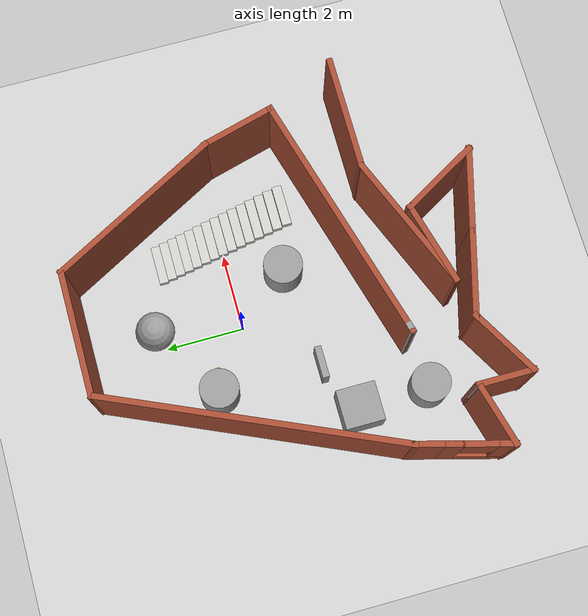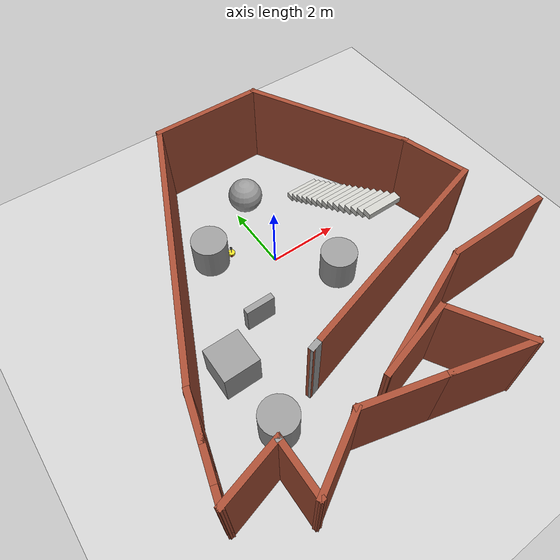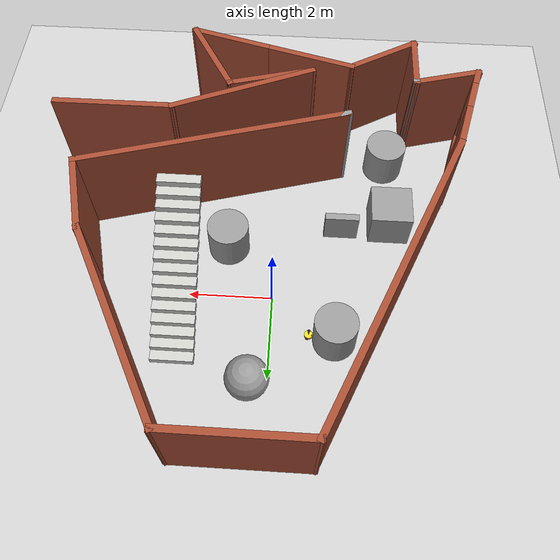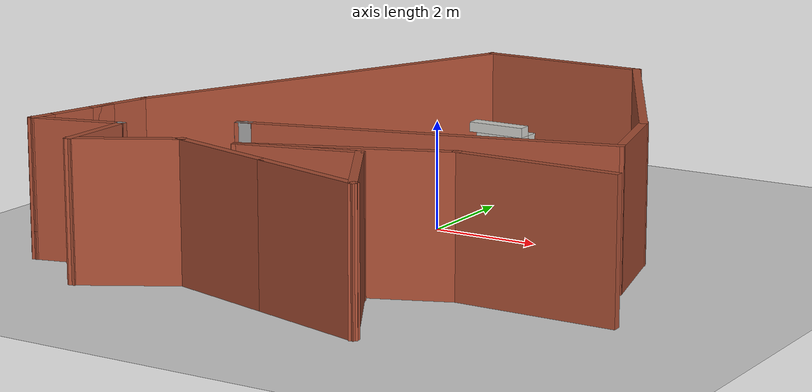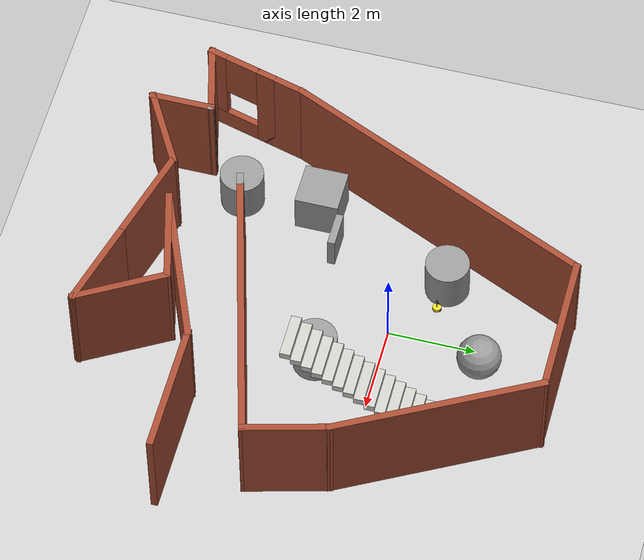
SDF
<sdf version="1.7">
 <world name="default">
  <light name="sun" type="directional">
   <pose>0 0 10 0 -0 0</pose>
   <diffuse>0.8 0.8 0.8 1</diffuse>
   <specular>0.2 0.2 0.2 1</specular>
   <attenuation>
    <range>1000</range>
    <constant>0.9</constant>
    <linear>0.01</linear>
    <quadratic>0.001</quadratic>
   </attenuation>
   <direction>-0.5 0.1 -0.9</direction>
   <spot><inner_angle>0</inner_angle><outer_angle>0</outer_angle><falloff>0</falloff></spot>
  </light>
  <model name="ground_plane">
   <static>1</static>
   <link name="link">
    <collision name="collision">
     <geometry><plane><normal>0 0 1</normal><size>100 100</size></plane></geometry>
     <surface>
      <contact><collide_bitmask>65535</collide_bitmask></contact>
      <friction><ode><mu>100</mu><mu2>50</mu2></ode></friction>
     </surface>
    </collision>
    <visual name="visual">
     <cast_shadows>0</cast_shadows>
     <geometry><plane><normal>0 0 1</normal><size>100 100</size></plane></geometry>
     <material>
      <script><uri>file://media/materials/scripts/gazebo.material</uri><name>Gazebo/Grey</name></script>
     </material>
    </visual>
   </link>
  </model>
  <gravity>0 0 -9.8</gravity>
  <magnetic_field>6e-06 2.3e-05 -4.2e-05</magnetic_field>
  <atmosphere type="adiabatic"/>
  <physics type="ode">
   <max_step_size>0.001</max_step_size>
   <real_time_factor>1</real_time_factor>
   <real_time_update_rate>1000</real_time_update_rate>
  </physics>
  <scene><ambient>0.4 0.4 0.4 1</ambient><background>0.7 0.7 0.7 1</background><shadows>1</shadows></scene>
  <spherical_coordinates>
   <surface_model>EARTH_WGS84</surface_model>
   <latitude_deg>0</latitude_deg>
   <longitude_deg>0</longitude_deg>
   <elevation>0</elevation>
   <heading_deg>0</heading_deg>
  </spherical_coordinates>
  <model name="mycar">
   <link name="base_footprint">
    <inertial>
     <pose>0.00127 0 0.093611 0 -0 0</pose>
     <mass>0.63</mass>
     <inertia>
      <ixx>0.00557395</ixx>
      <ixy>0</ixy>
      <ixz>-1.11111e-05</ixz>
      <iyy>0.00563694</iyy>
      <iyz>0</iyz>
      <izz>0.00261003</izz>
     </inertia>
    </inertial>
    <collision name="base_footprint_fixed_joint_lump__base_link_collision">
     <pose>0 0 0.055 0 -0 0</pose>
     <geometry><cylinder><length>0.08</length><radius>0.1</radius></cylinder></geometry>
    </collision>
    <collision name="base_footprint_fixed_joint_lump__camera_collision_1">
     <pose>0.08 0 0.1075 0 -0 0</pose>
     <geometry><box><size>0.01 0.025 0.025</size></box></geometry>
    </collision>
    <collision name="base_footprint_fixed_joint_lump__support_collision_2">
     <pose>0 0 0.17 0 -0 0</pose>
     <geometry><cylinder><length>0.15</length><radius>0.01</radius></cylinder></geometry>
    </collision>
    <collision name="base_footprint_fixed_joint_lump__laser_collision_3">
     <pose>0 0 0.27 0 -0 0</pose>
     <geometry><cylinder><length>0.05</length><radius>0.03</radius></cylinder></geometry>
    </collision>
    <visual name="base_footprint_visual"><geometry><sphere><radius>0.001</radius></sphere></geometry></visual>
    <visual name="base_footprint_fixed_joint_lump__base_link_visual_1">
     <pose>0 0 0.055 0 -0 0</pose>
     <geometry><cylinder><length>0.08</length><radius>0.1</radius></cylinder></geometry>
     <material>
      <script><name>Gazebo/Yellow</name><uri>file://media/materials/scripts/gazebo.material</uri></script>
     </material>
    </visual>
    <visual name="base_footprint_fixed_joint_lump__camera_visual_2">
     <pose>0.08 0 0.1075 0 -0 0</pose>
     <geometry><box><size>0.01 0.025 0.025</size></box></geometry>
     <material>
      <script><name>Gazebo/Blue</name><uri>file://media/materials/scripts/gazebo.material</uri></script>
     </material>
    </visual>
    <visual name="base_footprint_fixed_joint_lump__support_visual_3">
     <pose>0 0 0.17 0 -0 0</pose>
     <geometry><cylinder><length>0.15</length><radius>0.01</radius></cylinder></geometry>
     <material>
      <script><name>Gazebo/White</name><uri>file://media/materials/scripts/gazebo.material</uri></script>
     </material>
    </visual>
    <visual name="base_footprint_fixed_joint_lump__laser_visual_4">
     <pose>0 0 0.27 0 -0 0</pose>
     <geometry><cylinder><length>0.05</length><radius>0.03</radius></cylinder></geometry>
     <material>
      <script><name>Gazebo/Black</name><uri>file://media/materials/scripts/gazebo.material</uri></script>
     </material>
    </visual>
   </link>
   <joint name="back_wheel2base_link" type="revolute">
    <pose relative_to="base_footprint">-0.0925 0 0.0075 0 -0 0</pose>
    <parent>base_footprint</parent>
    <child>back_wheel</child>
    <axis>
     <xyz>1 1 1</xyz>
     <limit><lower>-1e+16</lower><upper>1e+16</upper></limit>
     <dynamics><spring_reference>0</spring_reference><spring_stiffness>0</spring_stiffness></dynamics>
    </axis>
   </joint>
   <link name="back_wheel">
    <pose relative_to="back_wheel2base_link">0 0 0 0 -0 0</pose>
    <inertial>
     <mass>0.03</mass>
     <inertia>
      <ixx>6.75e-07</ixx>
      <ixy>0</ixy>
      <ixz>0</ixz>
      <iyy>6.75e-07</iyy>
      <iyz>0</iyz>
      <izz>6.75e-07</izz>
     </inertia>
    </inertial>
    <collision name="back_wheel_collision">
     <geometry><sphere><radius>0.0075</radius></sphere></geometry>
    </collision>
    <visual name="back_wheel_visual">
     <geometry><sphere><radius>0.0075</radius></sphere></geometry>
     <material>
      <script><name>Gazebo/Red</name><uri>file://media/materials/scripts/gazebo.material</uri></script>
     </material>
    </visual>
   </link>
   <joint name="front_wheel2base_link" type="revolute">
    <pose relative_to="base_footprint">0.0925 0 0.0075 0 -0 0</pose>
    <parent>base_footprint</parent>
    <child>front_wheel</child>
    <axis>
     <xyz>1 1 1</xyz>
     <limit><lower>-1e+16</lower><upper>1e+16</upper></limit>
     <dynamics><spring_reference>0</spring_reference><spring_stiffness>0</spring_stiffness></dynamics>
    </axis>
   </joint>
   <link name="front_wheel">
    <pose relative_to="front_wheel2base_link">0 0 0 0 -0 0</pose>
    <inertial>
     <mass>0.03</mass>
     <inertia>
      <ixx>6.75e-07</ixx>
      <ixy>0</ixy>
      <ixz>0</ixz>
      <iyy>6.75e-07</iyy>
      <iyz>0</iyz>
      <izz>6.75e-07</izz>
     </inertia>
    </inertial>
    <collision name="front_wheel_collision">
     <geometry><sphere><radius>0.0075</radius></sphere></geometry>
    </collision>
    <visual name="front_wheel_visual">
     <geometry><sphere><radius>0.0075</radius></sphere></geometry>
     <material>
      <script><name>Gazebo/Red</name><uri>file://media/materials/scripts/gazebo.material</uri></script>
     </material>
    </visual>
   </link>
   <joint name="left_wheel2base_link" type="revolute">
    <pose relative_to="base_footprint">0 0.1 0.0325 0 -0 0</pose>
    <parent>base_footprint</parent>
    <child>left_wheel</child>
    <axis>
     <xyz>0 1 0</xyz>
     <limit><lower>-1e+16</lower><upper>1e+16</upper></limit>
     <dynamics><spring_reference>0</spring_reference><spring_stiffness>0</spring_stiffness></dynamics>
    </axis>
   </joint>
   <link name="left_wheel">
    <pose relative_to="left_wheel2base_link">0 0 0 0 -0 0</pose>
    <inertial>
     <mass>0.05</mass>
     <inertia>
      <ixx>1.41406e-05</ixx>
      <ixy>0</ixy>
      <ixz>0</ixz>
      <iyy>1.41406e-05</iyy>
      <iyz>0</iyz>
      <izz>2.64063e-05</izz>
     </inertia>
    </inertial>
    <collision name="left_wheel_collision">
     <pose>0 0 0 1.5708 -0 0</pose>
     <geometry><cylinder><length>0.015</length><radius>0.0325</radius></cylinder></geometry>
    </collision>
    <visual name="left_wheel_visual">
     <pose>0 0 0 1.5708 -0 0</pose>
     <geometry><cylinder><length>0.015</length><radius>0.0325</radius></cylinder></geometry>
     <material>
      <script><name>Gazebo/Red</name><uri>file://media/materials/scripts/gazebo.material</uri></script>
     </material>
    </visual>
   </link>
   <joint name="right_wheel2base_link" type="revolute">
    <pose relative_to="base_footprint">0 -0.1 0.0325 0 -0 0</pose>
    <parent>base_footprint</parent>
    <child>right_wheel</child>
    <axis>
     <xyz>0 1 0</xyz>
     <limit><lower>-1e+16</lower><upper>1e+16</upper></limit>
     <dynamics><spring_reference>0</spring_reference><spring_stiffness>0</spring_stiffness></dynamics>
    </axis>
   </joint>
   <link name="right_wheel">
    <pose relative_to="right_wheel2base_link">0 0 0 0 -0 0</pose>
    <inertial>
     <mass>0.05</mass>
     <inertia>
      <ixx>1.41406e-05</ixx>
      <ixy>0</ixy>
      <ixz>0</ixz>
      <iyy>1.41406e-05</iyy>
      <iyz>0</iyz>
      <izz>2.64063e-05</izz>
     </inertia>
    </inertial>
    <collision name="right_wheel_collision">
     <pose>0 0 0 1.5708 -0 0</pose>
     <geometry><cylinder><length>0.015</length><radius>0.0325</radius></cylinder></geometry>
    </collision>
    <visual name="right_wheel_visual">
     <pose>0 0 0 1.5708 -0 0</pose>
     <geometry><cylinder><length>0.015</length><radius>0.0325</radius></cylinder></geometry>
     <material>
      <script><name>Gazebo/Red</name><uri>file://media/materials/scripts/gazebo.material</uri></script>
     </material>
    </visual>
   </link>
   <static>0</static>
   <plugin name="differential_drive_controller" filename="libgazebo_ros_diff_drive.so">
    <rosDebugLevel>Debug</rosDebugLevel>
    <publishWheelTF>1</publishWheelTF>
    <robotNamespace>/</robotNamespace>
    <publishTf>1</publishTf>
    <publishWheelJointState>1</publishWheelJointState>
    <alwaysOn>1</alwaysOn>
    <updateRate>100.0</updateRate>
    <legacyMode>1</legacyMode>
    <leftJoint>left_wheel2base_link</leftJoint>
    <rightJoint>right_wheel2base_link</rightJoint>
    <wheelSeparation>0.2</wheelSeparation>
    <wheelDiameter>0.065</wheelDiameter>
    <broadcastTF>1</broadcastTF>
    <wheelTorque>30</wheelTorque>
    <wheelAcceleration>1.8</wheelAcceleration>
    <commandTopic>cmd_vel</commandTopic>
    <odometryFrame>odom</odometryFrame>
    <odometryTopic>odom</odometryTopic>
    <robotBaseFrame>base_footprint</robotBaseFrame>
   </plugin>
   <pose>-0.901026 0.903008 3e-06 1.9e-05 -2.8e-05 2.73335</pose>
  </model>
  <model name="wall">
   <pose>0.322681 -1.26251 0 0 -0 0</pose>
   <link name="Stairs_0">
    <visual name="Stairs_0_Visual_0">
     <pose>1.86382 2.90884 0.083333 0 -0 0</pose>
     <geometry><box><size>1 0.233333 0.166667</size></box></geometry>
     <material>
      <script><uri>file://media/materials/scripts/gazebo.material</uri><name>Gazebo/CeilingTiled</name></script>
      <ambient>1 1 1 1</ambient>
     </material>
     <meta><layer>0</layer></meta>
    </visual>
    <collision name="Stairs_0_Collision_0">
     <geometry><box><size>1 0.233333 0.166667</size></box></geometry>
     <pose>1.86382 2.90884 0.083333 0 -0 0</pose>
    </collision>
    <visual name="Stairs_0_Visual_1">
     <pose>1.86382 2.67551 0.25 0 -0 0</pose>
     <geometry><box><size>1 0.233333 0.166667</size></box></geometry>
     <material>
      <script><uri>file://media/materials/scripts/gazebo.material</uri><name>Gazebo/CeilingTiled</name></script>
      <ambient>1 1 1 1</ambient>
     </material>
     <meta><layer>0</layer></meta>
    </visual>
    <collision name="Stairs_0_Collision_1">
     <geometry><box><size>1 0.233333 0.166667</size></box></geometry>
     <pose>1.86382 2.67551 0.25 0 -0 0</pose>
    </collision>
    <visual name="Stairs_0_Visual_2">
     <pose>1.86382 2.44218 0.416667 0 -0 0</pose>
     <geometry><box><size>1 0.233333 0.166667</size></box></geometry>
     <material>
      <script><uri>file://media/materials/scripts/gazebo.material</uri><name>Gazebo/CeilingTiled</name></script>
      <ambient>1 1 1 1</ambient>
     </material>
     <meta><layer>0</layer></meta>
    </visual>
    <collision name="Stairs_0_Collision_2">
     <geometry><box><size>1 0.233333 0.166667</size></box></geometry>
     <pose>1.86382 2.44218 0.416667 0 -0 0</pose>
    </collision>
    <visual name="Stairs_0_Visual_3">
     <pose>1.86382 2.20884 0.583333 0 -0 0</pose>
     <geometry><box><size>1 0.233333 0.166667</size></box></geometry>
     <material>
      <script><uri>file://media/materials/scripts/gazebo.material</uri><name>Gazebo/CeilingTiled</name></script>
      <ambient>1 1 1 1</ambient>
     </material>
     <meta><layer>0</layer></meta>
    </visual>
    <collision name="Stairs_0_Collision_3">
     <geometry><box><size>1 0.233333 0.166667</size></box></geometry>
     <pose>1.86382 2.20884 0.583333 0 -0 0</pose>
    </collision>
    <visual name="Stairs_0_Visual_4">
     <pose>1.86382 1.97551 0.75 0 -0 0</pose>
     <geometry><box><size>1 0.233333 0.166667</size></box></geometry>
     <material>
      <script><uri>file://media/materials/scripts/gazebo.material</uri><name>Gazebo/CeilingTiled</name></script>
      <ambient>1 1 1 1</ambient>
     </material>
     <meta><layer>0</layer></meta>
    </visual>
    <collision name="Stairs_0_Collision_4">
     <geometry><box><size>1 0.233333 0.166667</size></box></geometry>
     <pose>1.86382 1.97551 0.75 0 -0 0</pose>
    </collision>
    <visual name="Stairs_0_Visual_5">
     <pose>1.86382 1.74218 0.916667 0 -0 0</pose>
     <geometry><box><size>1 0.233333 0.166667</size></box></geometry>
     <material>
      <script><uri>file://media/materials/scripts/gazebo.material</uri><name>Gazebo/CeilingTiled</name></script>
      <ambient>1 1 1 1</ambient>
     </material>
     <meta><layer>0</layer></meta>
    </visual>
    <collision name="Stairs_0_Collision_5">
     <geometry><box><size>1 0.233333 0.166667</size></box></geometry>
     <pose>1.86382 1.74218 0.916667 0 -0 0</pose>
    </collision>
    <visual name="Stairs_0_Visual_6">
     <pose>1.86382 1.50884 1.08333 0 -0 0</pose>
     <geometry><box><size>1 0.233333 0.166667</size></box></geometry>
     <material>
      <script><uri>file://media/materials/scripts/gazebo.material</uri><name>Gazebo/CeilingTiled</name></script>
      <ambient>1 1 1 1</ambient>
     </material>
     <meta><layer>0</layer></meta>
    </visual>
    <collision name="Stairs_0_Collision_6">
     <geometry><box><size>1 0.233333 0.166667</size></box></geometry>
     <pose>1.86382 1.50884 1.08333 0 -0 0</pose>
    </collision>
    <visual name="Stairs_0_Visual_7">
     <pose>1.86382 1.27551 1.25 0 -0 0</pose>
     <geometry><box><size>1 0.233333 0.166667</size></box></geometry>
     <material>
      <script><uri>file://media/materials/scripts/gazebo.material</uri><name>Gazebo/CeilingTiled</name></script>
      <ambient>1 1 1 1</ambient>
     </material>
     <meta><layer>0</layer></meta>
    </visual>
    <collision name="Stairs_0_Collision_7">
     <geometry><box><size>1 0.233333 0.166667</size></box></geometry>
     <pose>1.86382 1.27551 1.25 0 -0 0</pose>
    </collision>
    <visual name="Stairs_0_Visual_8">
     <pose>1.86382 1.04218 1.41667 0 -0 0</pose>
     <geometry><box><size>1 0.233333 0.166667</size></box></geometry>
     <material>
      <script><uri>file://media/materials/scripts/gazebo.material</uri><name>Gazebo/CeilingTiled</name></script>
      <ambient>1 1 1 1</ambient>
     </material>
     <meta><layer>0</layer></meta>
    </visual>
    <collision name="Stairs_0_Collision_8">
     <geometry><box><size>1 0.233333 0.166667</size></box></geometry>
     <pose>1.86382 1.04218 1.41667 0 -0 0</pose>
    </collision>
    <visual name="Stairs_0_Visual_9">
     <pose>1.86382 0.808841 1.58333 0 -0 0</pose>
     <geometry><box><size>1 0.233333 0.166667</size></box></geometry>
     <material>
      <script><uri>file://media/materials/scripts/gazebo.material</uri><name>Gazebo/CeilingTiled</name></script>
      <ambient>1 1 1 1</ambient>
     </material>
     <meta><layer>0</layer></meta>
    </visual>
    <collision name="Stairs_0_Collision_9">
     <geometry><box><size>1 0.233333 0.166667</size></box></geometry>
     <pose>1.86382 0.808841 1.58333 0 -0 0</pose>
    </collision>
    <visual name="Stairs_0_Visual_10">
     <pose>1.86382 0.575508 1.75 0 -0 0</pose>
     <geometry><box><size>1 0.233333 0.166667</size></box></geometry>
     <material>
      <script><uri>file://media/materials/scripts/gazebo.material</uri><name>Gazebo/CeilingTiled</name></script>
      <ambient>1 1 1 1</ambient>
     </material>
     <meta><layer>0</layer></meta>
    </visual>
    <collision name="Stairs_0_Collision_10">
     <geometry><box><size>1 0.233333 0.166667</size></box></geometry>
     <pose>1.86382 0.575508 1.75 0 -0 0</pose>
    </collision>
    <visual name="Stairs_0_Visual_11">
     <pose>1.86382 0.342175 1.91667 0 -0 0</pose>
     <geometry><box><size>1 0.233333 0.166667</size></box></geometry>
     <material>
      <script><uri>file://media/materials/scripts/gazebo.material</uri><name>Gazebo/CeilingTiled</name></script>
      <ambient>1 1 1 1</ambient>
     </material>
     <meta><layer>0</layer></meta>
    </visual>
    <collision name="Stairs_0_Collision_11">
     <geometry><box><size>1 0.233333 0.166667</size></box></geometry>
     <pose>1.86382 0.342175 1.91667 0 -0 0</pose>
    </collision>
    <visual name="Stairs_0_Visual_12">
     <pose>1.86382 0.108841 2.08333 0 -0 0</pose>
     <geometry><box><size>1 0.233333 0.166667</size></box></geometry>
     <material>
      <script><uri>file://media/materials/scripts/gazebo.material</uri><name>Gazebo/CeilingTiled</name></script>
      <ambient>1 1 1 1</ambient>
     </material>
     <meta><layer>0</layer></meta>
    </visual>
    <collision name="Stairs_0_Collision_12">
     <geometry><box><size>1 0.233333 0.166667</size></box></geometry>
     <pose>1.86382 0.108841 2.08333 0 -0 0</pose>
    </collision>
    <visual name="Stairs_0_Visual_13">
     <pose>1.86382 -0.124492 2.25 0 -0 0</pose>
     <geometry><box><size>1 0.233333 0.166667</size></box></geometry>
     <material>
      <script><uri>file://media/materials/scripts/gazebo.material</uri><name>Gazebo/CeilingTiled</name></script>
      <ambient>1 1 1 1</ambient>
     </material>
     <meta><layer>0</layer></meta>
    </visual>
    <collision name="Stairs_0_Collision_13">
     <geometry><box><size>1 0.233333 0.166667</size></box></geometry>
     <pose>1.86382 -0.124492 2.25 0 -0 0</pose>
    </collision>
    <visual name="Stairs_0_Visual_14">
     <pose>1.86382 -0.357825 2.41667 0 -0 0</pose>
     <geometry><box><size>1 0.233333 0.166667</size></box></geometry>
     <material>
      <script><uri>file://media/materials/scripts/gazebo.material</uri><name>Gazebo/CeilingTiled</name></script>
      <ambient>1 1 1 1</ambient>
     </material>
     <meta><layer>0</layer></meta>
    </visual>
    <collision name="Stairs_0_Collision_14">
     <geometry><box><size>1 0.233333 0.166667</size></box></geometry>
     <pose>1.86382 -0.357825 2.41667 0 -0 0</pose>
    </collision>
   </link>
   <link name="Wall_0">
    <collision name="Wall_0_Collision">
     <geometry><box><size>0.3 0.15 2.5</size></box></geometry>
     <pose>0 0 1.25 0 -0 0</pose>
    </collision>
    <visual name="Wall_0_Visual">
     <pose>0 0 1.25 0 -0 0</pose>
     <geometry><box><size>0.3 0.15 2.5</size></box></geometry>
     <material>
      <script><uri>file://media/materials/scripts/gazebo.material</uri><name>Gazebo/Grey</name></script>
      <ambient>1 1 1 1</ambient>
     </material>
     <meta><layer>0</layer></meta>
    </visual>
    <pose>-1.86513 -2.5169 0 0 -0 -2.87979</pose>
   </link>
   <link name="Wall_1">
    <collision name="Wall_1_Collision">
     <geometry><box><size>6.69663 0.15 2.5</size></box></geometry>
     <pose>0 0 1.25 0 -0 0</pose>
    </collision>
    <visual name="Wall_1_Visual">
     <pose>0 0 1.25 0 -0 0</pose>
     <geometry><box><size>6.69663 0.15 2.5</size></box></geometry>
     <material>
      <script><uri>file://media/materials/scripts/gazebo.material</uri><name>Gazebo/Bricks</name></script>
      <ambient>1 1 1 1</ambient>
     </material>
     <meta><layer>0</layer></meta>
    </visual>
    <pose>1.21243 -1.64631 0 0 -0 0.275362</pose>
   </link>
   <link name="Wall_10">
    <collision name="Wall_10_Collision">
     <geometry><box><size>2 0.15 2.5</size></box></geometry>
     <pose>0 0 1.25 0 -0 0</pose>
    </collision>
    <visual name="Wall_10_Visual">
     <pose>0 0 1.25 0 -0 0</pose>
     <geometry><box><size>2 0.15 2.5</size></box></geometry>
     <material>
      <script><uri>file://media/materials/scripts/gazebo.material</uri><name>Gazebo/Bricks</name></script>
      <ambient>1 1 1 1</ambient>
     </material>
     <meta><layer>0</layer></meta>
    </visual>
    <pose>-2.80276 -4.55519 0 0 -0 0.523599</pose>
   </link>
   <link name="Wall_11">
    <collision name="Wall_11_Collision">
     <geometry><box><size>2.25 0.15 2.5</size></box></geometry>
     <pose>0 0 1.25 0 -0 0</pose>
    </collision>
    <visual name="Wall_11_Visual">
     <pose>0 0 1.25 0 -0 0</pose>
     <geometry><box><size>2.25 0.15 2.5</size></box></geometry>
     <material>
      <script><uri>file://media/materials/scripts/gazebo.material</uri><name>Gazebo/Bricks</name></script>
      <ambient>1 1 1 1</ambient>
     </material>
     <meta><layer>0</layer></meta>
    </visual>
    <pose>-0.987461 -4.36444 0 0 -0 -0.261799</pose>
   </link>
   <link name="Wall_12">
    <collision name="Wall_12_Collision">
     <geometry><box><size>2.25 0.15 2.5</size></box></geometry>
     <pose>0 0 1.25 0 -0 0</pose>
    </collision>
    <visual name="Wall_12_Visual">
     <pose>0 0 1.25 0 -0 0</pose>
     <geometry><box><size>2.25 0.15 2.5</size></box></geometry>
     <material>
      <script><uri>file://media/materials/scripts/gazebo.material</uri><name>Gazebo/Bricks</name></script>
      <ambient>1 1 1 1</ambient>
     </material>
     <meta><layer>0</layer></meta>
    </visual>
    <pose>1.04098 -4.90796 0 0 -0 -0.261799</pose>
   </link>
   <link name="Wall_13">
    <collision name="Wall_13_Collision">
     <geometry><box><size>2.25 0.15 2.5</size></box></geometry>
     <pose>0 0 1.25 0 -0 0</pose>
    </collision>
    <visual name="Wall_13_Visual">
     <pose>0 0 1.25 0 -0 0</pose>
     <geometry><box><size>2.25 0.15 2.5</size></box></geometry>
     <material>
      <script><uri>file://media/materials/scripts/gazebo.material</uri><name>Gazebo/Bricks</name></script>
      <ambient>1 1 1 1</ambient>
     </material>
     <meta><layer>0</layer></meta>
    </visual>
    <pose>1.53021 -4.2704 0 0 -0 2.0944</pose>
   </link>
   <link name="Wall_14">
    <collision name="Wall_14_Collision">
     <geometry><box><size>2.25 0.15 2.5</size></box></geometry>
     <pose>0 0 1.25 0 -0 0</pose>
    </collision>
    <visual name="Wall_14_Visual">
     <pose>0 0 1.25 0 -0 0</pose>
     <geometry><box><size>2.25 0.15 2.5</size></box></geometry>
     <material>
      <script><uri>file://media/materials/scripts/gazebo.material</uri><name>Gazebo/Bricks</name></script>
      <ambient>1 1 1 1</ambient>
     </material>
     <meta><layer>0</layer></meta>
    </visual>
    <pose>-0.009017 -3.63283 0 0 -0 -2.87979</pose>
   </link>
   <link name="Wall_15">
    <collision name="Wall_15_Collision">
     <geometry><box><size>3.77408 0.15 2.5</size></box></geometry>
     <pose>0 0 1.25 0 -0 0</pose>
    </collision>
    <visual name="Wall_15_Visual">
     <pose>0 0 1.25 0 -0 0</pose>
     <geometry><box><size>3.77408 0.15 2.5</size></box></geometry>
     <material>
      <script><uri>file://media/materials/scripts/gazebo.material</uri><name>Gazebo/Bricks</name></script>
      <ambient>1 1 1 1</ambient>
     </material>
     <meta><layer>0</layer></meta>
    </visual>
    <pose>0.651464 -3.21259 0 0 -0 0.39184</pose>
   </link>
   <link name="Wall_16">
    <collision name="Wall_16_Collision">
     <geometry><box><size>3 0.15 2.5</size></box></geometry>
     <pose>0 0 1.25 0 -0 0</pose>
    </collision>
    <visual name="Wall_16_Visual">
     <pose>0 0 1.25 0 -0 0</pose>
     <geometry><box><size>3 0.15 2.5</size></box></geometry>
     <material>
      <script><uri>file://media/materials/scripts/gazebo.material</uri><name>Gazebo/Bricks</name></script>
      <ambient>1 1 1 1</ambient>
     </material>
     <meta><layer>0</layer></meta>
    </visual>
    <pose>3.75117 -2.52059 0 0 -0 0</pose>
   </link>
   <link name="Wall_2">
    <collision name="Wall_2_Collision">
     <geometry><box><size>2 0.15 2.5</size></box></geometry>
     <pose>0 0 1.25 0 -0 0</pose>
    </collision>
    <visual name="Wall_2_Visual">
     <pose>0 0 1.25 0 -0 0</pose>
     <geometry><box><size>2 0.15 2.5</size></box></geometry>
     <material>
      <script><uri>file://media/materials/scripts/gazebo.material</uri><name>Gazebo/Bricks</name></script>
      <ambient>1 1 1 1</ambient>
     </material>
     <meta><layer>0</layer></meta>
    </visual>
    <pose>4.12302 0.137167 0 0 -0 1.8326</pose>
   </link>
   <link name="Wall_3">
    <collision name="Wall_3_Collision">
     <geometry><box><size>4.85813 0.15 2.5</size></box></geometry>
     <pose>0 0 1.25 0 -0 0</pose>
    </collision>
    <visual name="Wall_3_Visual">
     <pose>0 0 1.25 0 -0 0</pose>
     <geometry><box><size>4.85813 0.15 2.5</size></box></geometry>
     <material>
      <script><uri>file://media/materials/scripts/gazebo.material</uri><name>Gazebo/Bricks</name></script>
      <ambient>1 1 1 1</ambient>
     </material>
     <meta><layer>0</layer></meta>
    </visual>
    <pose>2.77186 3.10565 0 0 -0 2.06266</pose>
   </link>
   <link name="Wall_4">
    <collision name="Wall_4_Collision">
     <geometry><box><size>3.25 0.15 2.5</size></box></geometry>
     <pose>0 0 1.25 0 -0 0</pose>
    </collision>
    <visual name="Wall_4_Visual">
     <pose>0 0 1.25 0 -0 0</pose>
     <geometry><box><size>3.25 0.15 2.5</size></box></geometry>
     <material>
      <script><uri>file://media/materials/scripts/gazebo.material</uri><name>Gazebo/Bricks</name></script>
      <ambient>1 1 1 1</ambient>
     </material>
     <meta><layer>0</layer></meta>
    </visual>
    <pose>0.110114 5.18065 0 0 -0 3.14159</pose>
   </link>
   <link name="Wall_5">
    <collision name="Wall_5_Collision">
     <geometry><box><size>7.80342 0.15 2.5</size></box></geometry>
     <pose>0 0 1.25 0 -0 0</pose>
    </collision>
    <visual name="Wall_5_Visual">
     <pose>0 0 1.25 0 -0 0</pose>
     <geometry><box><size>7.80342 0.15 2.5</size></box></geometry>
     <material>
      <script><uri>file://media/materials/scripts/gazebo.material</uri><name>Gazebo/Bricks</name></script>
      <ambient>1 1 1 1</ambient>
     </material>
     <meta><layer>0</layer></meta>
    </visual>
    <pose>-2.99549 1.68439 0 0 -0 -1.98943</pose>
   </link>
   <link name="Wall_6">
    <pose>-4.8552 -2.94683 0 0 -0 -1.8326</pose>
    <visual name="Wall_6_Visual_0">
     <pose>-0.635959 0 1.25 0 -0 0</pose>
     <geometry><box><size>1.22808 0.15 2.5</size></box></geometry>
     <material>
      <script><uri>file://media/materials/scripts/gazebo.material</uri><name>Gazebo/Bricks</name></script>
      <ambient>1 1 1 1</ambient>
     </material>
     <meta><layer>0</layer></meta>
    </visual>
    <collision name="Wall_6_Collision_0">
     <geometry><box><size>1.22808 0.15 2.5</size></box></geometry>
     <pose>-0.635959 0 1.25 0 -0 0</pose>
    </collision>
    <visual name="Wall_6_Visual_1">
     <pose>-0.252038 0 1.25 0 -0 0</pose>
     <geometry><box><size>0.460241 0.15 2.5</size></box></geometry>
     <material>
      <script><uri>file://media/materials/scripts/gazebo.material</uri><name>Gazebo/Bricks</name></script>
      <ambient>1 1 1 1</ambient>
     </material>
     <meta><layer>0</layer></meta>
    </visual>
    <collision name="Wall_6_Collision_1">
     <geometry><box><size>0.460241 0.15 2.5</size></box></geometry>
     <pose>-0.252038 0 1.25 0 -0 0</pose>
    </collision>
    <visual name="Wall_6_Visual_2">
     <pose>0.614041 0 0.25 0 -0 0</pose>
     <geometry><box><size>1.27192 0.15 0.5</size></box></geometry>
     <material>
      <script><uri>file://media/materials/scripts/gazebo.material</uri><name>Gazebo/Bricks</name></script>
      <ambient>1 1 1 1</ambient>
     </material>
     <meta><layer>0</layer></meta>
    </visual>
    <collision name="Wall_6_Collision_2">
     <geometry><box><size>1.27192 0.15 0.5</size></box></geometry>
     <pose>0.614041 0 0.25 0 -0 0</pose>
    </collision>
    <visual name="Wall_6_Visual_3">
     <pose>0.614041 0 0.25 0 -0 0</pose>
     <geometry><box><size>1.27192 0.15 0.5</size></box></geometry>
     <material>
      <script><uri>file://media/materials/scripts/gazebo.material</uri><name>Gazebo/Bricks</name></script>
      <ambient>1 1 1 1</ambient>
     </material>
     <meta><layer>0</layer></meta>
    </visual>
    <collision name="Wall_6_Collision_3">
     <geometry><box><size>1.27192 0.15 0.5</size></box></geometry>
     <pose>0.614041 0 0.25 0 -0 0</pose>
    </collision>
    <visual name="Wall_6_Visual_4">
     <pose>1.01404 0 1.5 0 -0 0</pose>
     <geometry><box><size>0.471918 0.15 2</size></box></geometry>
     <material>
      <script><uri>file://media/materials/scripts/gazebo.material</uri><name>Gazebo/Bricks</name></script>
      <ambient>1 1 1 1</ambient>
     </material>
     <meta><layer>0</layer></meta>
    </visual>
    <collision name="Wall_6_Collision_4">
     <geometry><box><size>0.471918 0.15 2</size></box></geometry>
     <pose>1.01404 0 1.5 0 -0 0</pose>
    </collision>
    <visual name="Wall_6_Visual_5">
     <pose>1.01404 0 1.5 0 -0 0</pose>
     <geometry><box><size>0.471918 0.15 2</size></box></geometry>
     <material>
      <script><uri>file://media/materials/scripts/gazebo.material</uri><name>Gazebo/Bricks</name></script>
      <ambient>1 1 1 1</ambient>
     </material>
     <meta><layer>0</layer></meta>
    </visual>
    <collision name="Wall_6_Collision_5">
     <geometry><box><size>0.471918 0.15 2</size></box></geometry>
     <pose>1.01404 0 1.5 0 -0 0</pose>
    </collision>
    <visual name="Wall_6_Visual_6">
     <pose>0.378082 0 1.9 0 -0 0</pose>
     <geometry><box><size>0.8 0.15 1.2</size></box></geometry>
     <material>
      <script><uri>file://media/materials/scripts/gazebo.material</uri><name>Gazebo/Bricks</name></script>
      <ambient>1 1 1 1</ambient>
     </material>
     <meta><layer>0</layer></meta>
    </visual>
    <collision name="Wall_6_Collision_6">
     <geometry><box><size>0.8 0.15 1.2</size></box></geometry>
     <pose>0.378082 0 1.9 0 -0 0</pose>
    </collision>
    <visual name="Wall_6_Visual_7">
     <pose>0.378082 0 1.9 0 -0 0</pose>
     <geometry><box><size>0.8 0.15 1.2</size></box></geometry>
     <material>
      <script><uri>file://media/materials/scripts/gazebo.material</uri><name>Gazebo/Bricks</name></script>
      <ambient>1 1 1 1</ambient>
     </material>
     <meta><layer>0</layer></meta>
    </visual>
    <collision name="Wall_6_Collision_7">
     <geometry><box><size>0.8 0.15 1.2</size></box></geometry>
     <pose>0.378082 0 1.9 0 -0 0</pose>
    </collision>
   </link>
   <link name="Wall_7">
    <collision name="Wall_7_Collision">
     <geometry><box><size>1.75 0.15 2.5</size></box></geometry>
     <pose>0 0 1.25 0 -0 0</pose>
    </collision>
    <visual name="Wall_7_Visual">
     <pose>0 0 1.25 0 -0 0</pose>
     <geometry><box><size>1.75 0.15 2.5</size></box></geometry>
     <material>
      <script><uri>file://media/materials/scripts/gazebo.material</uri><name>Gazebo/Bricks</name></script>
      <ambient>1 1 1 1</ambient>
     </material>
     <meta><layer>0</layer></meta>
    </visual>
    <pose>-4.38657 -3.87474 0 0 -0 0.261799</pose>
   </link>
   <link name="Wall_8">
    <collision name="Wall_8_Collision">
     <geometry><box><size>0.16 0.15 2.5</size></box></geometry>
     <pose>0 0 1.25 0 -0 0</pose>
    </collision>
    <visual name="Wall_8_Visual">
     <pose>0 0 1.25 0 -0 0</pose>
     <geometry><box><size>0.16 0.15 2.5</size></box></geometry>
     <material>
      <script><uri>file://media/materials/scripts/gazebo.material</uri><name>Gazebo/Grey</name></script>
      <ambient>1 1 1 1</ambient>
     </material>
     <meta><layer>0</layer></meta>
    </visual>
    <pose>-3.60883 -3.66769 0 0 -0 0</pose>
   </link>
   <link name="Wall_9">
    <collision name="Wall_9_Collision">
     <geometry><box><size>1.5 0.15 2.5</size></box></geometry>
     <pose>0 0 1.25 0 -0 0</pose>
    </collision>
    <visual name="Wall_9_Visual">
     <pose>0 0 1.25 0 -0 0</pose>
     <geometry><box><size>1.5 0.15 2.5</size></box></geometry>
     <material>
      <script><uri>file://media/materials/scripts/gazebo.material</uri><name>Gazebo/Bricks</name></script>
      <ambient>1 1 1 1</ambient>
     </material>
     <meta><layer>0</layer></meta>
    </visual>
    <pose>-3.60383 -4.34269 0 0 -0 -1.5708</pose>
   </link>
   <link name="Window_0">
    <collision name="Window_0_Collision">
     <geometry><box><size>0.8 0.17 0.8</size></box></geometry>
     <pose>0 0 0.4 0 -0 0</pose>
    </collision>
    <visual name="Window_0_Visual">
     <pose>0 0 0.4 0 -0 0</pose>
     <geometry><box><size>0.8 0.17 0.8</size></box></geometry>
     <material>
      <script><uri>file://media/materials/scripts/gazebo.material</uri><name>Gazebo/Grey</name></script>
     </material>
    </visual>
    <pose>-1.89268 -0.347492 0.5 0 -0 0</pose>
   </link>
   <static>1</static>
  </model>
  <model name="unit_cylinder">
   <pose>-1.48986 0.990882 0.508074 0.015012 0.006305 0.215673</pose>
   <link name="link">
    <inertial>
     <mass>1</mass>
     <inertia><ixx>0.145833</ixx><ixy>0</ixy><ixz>0</ixz><iyy>0.145833</iyy><iyz>0</iyz><izz>0.125</izz></inertia>
    </inertial>
    <collision name="collision">
     <geometry><cylinder><radius>0.5</radius><length>1</length></cylinder></geometry>
    </collision>
    <visual name="visual">
     <geometry><cylinder><radius>0.5</radius><length>1</length></cylinder></geometry>
     <material>
      <script><name>Gazebo/Grey</name><uri>file://media/materials/scripts/gazebo.material</uri></script>
     </material>
    </visual>
   </link>
  </model>
  <model name="unit_sphere">
   <pose>0.425129 2.17311 0.5 0 -0 0</pose>
   <link name="link">
    <inertial>
     <mass>1</mass>
     <inertia><ixx>0.1</ixx><ixy>0</ixy><ixz>0</ixz><iyy>0.1</iyy><iyz>0</iyz><izz>0.1</izz></inertia>
    </inertial>
    <collision name="collision"><geometry><sphere><radius>0.5</radius></sphere></geometry></collision>
    <visual name="visual">
     <geometry><sphere><radius>0.5</radius></sphere></geometry>
     <material>
      <script><name>Gazebo/Grey</name><uri>file://media/materials/scripts/gazebo.material</uri></script>
     </material>
    </visual>
   </link>
  </model>
  <model name="unit_cylinder_0">
   <pose>1.14508 -1.37095 0.499997 3e-06 4e-06 -0</pose>
   <link name="link">
    <inertial>
     <mass>1</mass>
     <inertia><ixx>0.145833</ixx><ixy>0</ixy><ixz>0</ixz><iyy>0.145833</iyy><iyz>0</iyz><izz>0.125</izz></inertia>
    </inertial>
    <collision name="collision">
     <geometry><cylinder><radius>0.5</radius><length>1</length></cylinder></geometry>
    </collision>
    <visual name="visual">
     <geometry><cylinder><radius>0.5</radius><length>1</length></cylinder></geometry>
     <material>
      <script><name>Gazebo/Grey</name><uri>file://media/materials/scripts/gazebo.material</uri></script>
     </material>
    </visual>
   </link>
  </model>
  <model name="unit_box">
   <pose>-2.80797 -2.25469 0.499995 -1e-05 -0 0</pose>
   <link name="link">
    <inertial>
     <mass>1</mass>
     <inertia>
      <ixx>0.166667</ixx>
      <ixy>0</ixy>
      <ixz>0</ixz>
      <iyy>0.166667</iyy>
      <iyz>0</iyz>
      <izz>0.166667</izz>
     </inertia>
    </inertial>
    <collision name="collision"><geometry><box><size>1 1 1</size></box></geometry></collision>
    <visual name="visual">
     <geometry><box><size>1 1 1</size></box></geometry>
     <material>
      <script><name>Gazebo/Grey</name><uri>file://media/materials/scripts/gazebo.material</uri></script>
     </material>
    </visual>
   </link>
  </model>
  <model name="unit_cylinder_1">
   <pose>-2.72399 -4.09604 0.499997 3e-06 4e-06 -0</pose>
   <link name="link">
    <inertial>
     <mass>1</mass>
     <inertia><ixx>0.145833</ixx><ixy>0</ixy><ixz>0</ixz><iyy>0.145833</iyy><iyz>0</iyz><izz>0.125</izz></inertia>
    </inertial>
    <collision name="collision">
     <geometry><cylinder><radius>0.5</radius><length>1</length></cylinder></geometry>
    </collision>
    <visual name="visual">
     <geometry><cylinder><radius>0.5</radius><length>1</length></cylinder></geometry>
     <material>
      <script><name>Gazebo/Grey</name><uri>file://media/materials/scripts/gazebo.material</uri></script>
     </material>
    </visual>
   </link>
  </model>
 </world>
</sdf>
